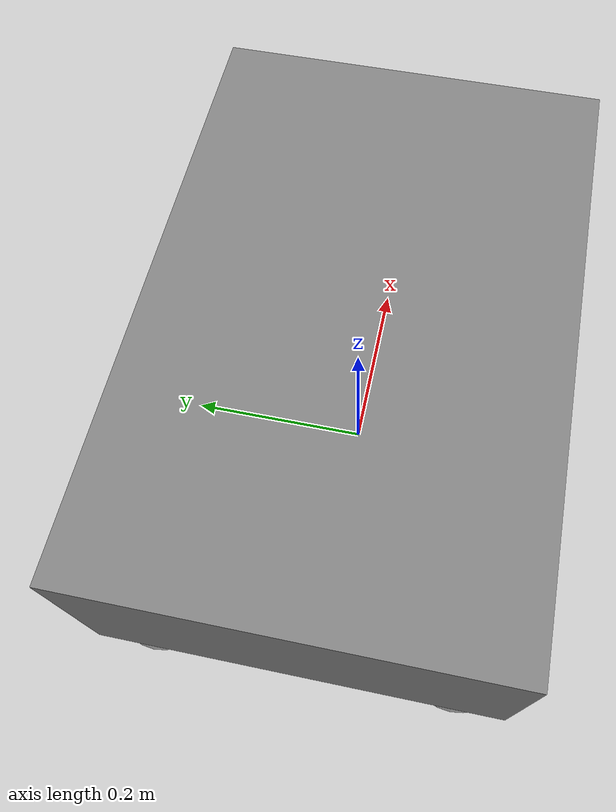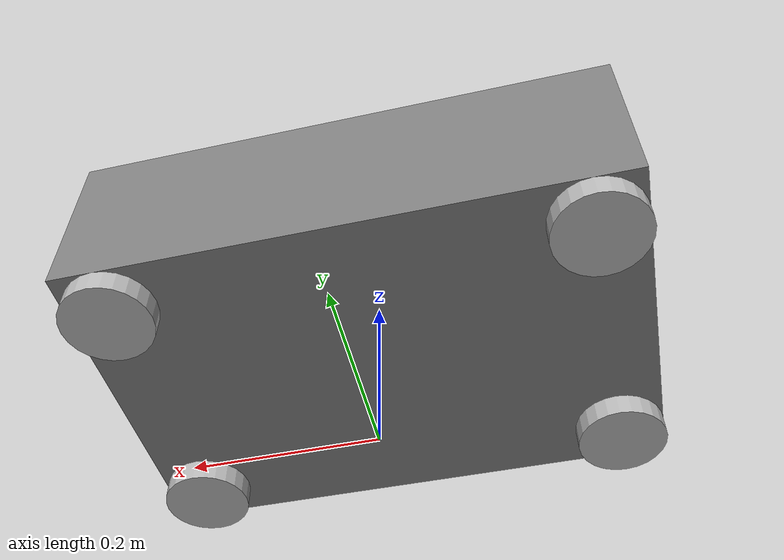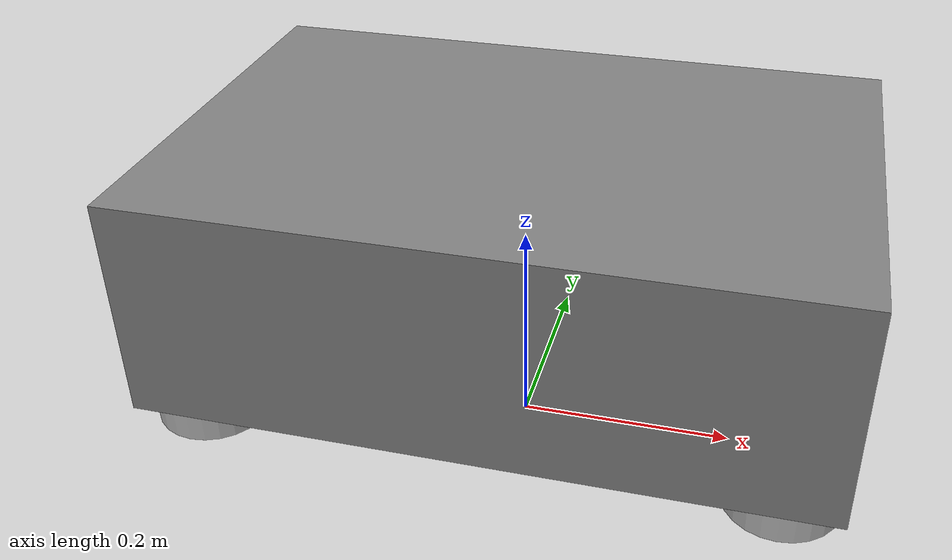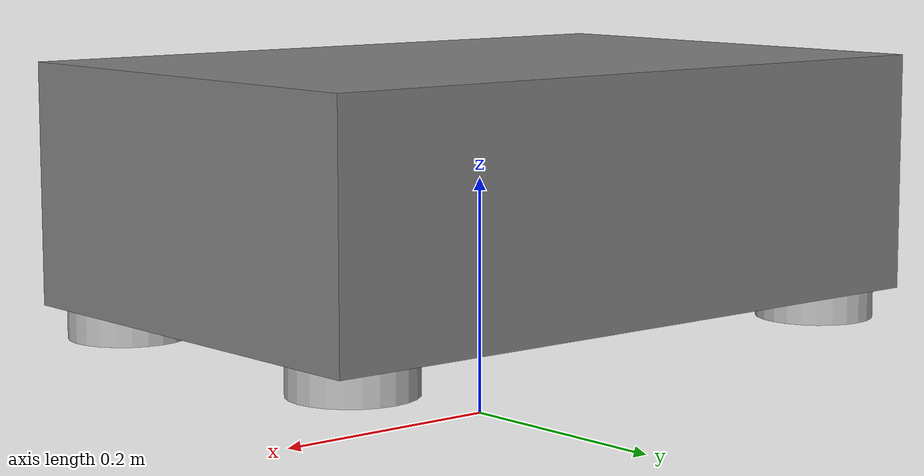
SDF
<?xml version="1.0" ?>
<sdf version="1.7">
  <model name="simple_bot">
    <static>false</static>

    <!-- Chassis -->
    <link name="chassis">
      <pose>0 0 0.2 0 0 0</pose>
      <inertial>
        <mass>5.0</mass>
      </inertial>
      <collision name="collision">
        <geometry>
          <box>
            <size>0.6 0.4 0.2</size>
          </box>
        </geometry>
      </collision>
      <visual name="visual">
        <geometry>
          <box>
            <size>0.6 0.4 0.2</size>
          </box>
        </geometry>
        <material>
          <ambient>0.3 0.3 0.3 1</ambient>
          <diffuse>0.5 0.5 0.5 1</diffuse>
        </material>
      </visual>

      <!-- Depth Camera -->
      <sensor name="depth_camera" type="depth">
        <always_on>1</always_on>
        <update_rate>30</update_rate>
        <visualize>true</visualize>
        <pose>0 0 0.5 0 0 0</pose>
        <depth_camera>
          <horizontal_fov>1.047</horizontal_fov>
          <image>
            <width>640</width>
            <height>480</height>
            <format>R8G8B8</format>
          </image>
          <clip>
            <near>0.1</near>
            <far>10</far>
          </clip>
        </depth_camera>
      </sensor>
    </link>

    <!-- 4 wheels -->
    <link name="wheel_front_left">
      <pose>0.25 0.15 0.1 0 0 0</pose>
      <collision name="collision">
        <geometry>
          <cylinder>
            <radius>0.05</radius>
            <length>0.05</length>
          </cylinder>
        </geometry>
      </collision>
      <visual name="visual">
        <geometry>
          <cylinder>
            <radius>0.05</radius>
            <length>0.05</length>
          </cylinder>
        </geometry>
      </visual>
    </link>

    <link name="wheel_front_right">
      <pose>0.25 -0.15 0.1 0 0 0</pose>
      <collision name="collision">
        <geometry>
          <cylinder>
            <radius>0.05</radius>
            <length>0.05</length>
          </cylinder>
        </geometry>
      </collision>
      <visual name="visual">
        <geometry>
          <cylinder>
            <radius>0.05</radius>
            <length>0.05</length>
          </cylinder>
        </geometry>
      </visual>
    </link>

    <link name="wheel_back_left">
      <pose>-0.25 0.15 0.1 0 0 0</pose>
      <collision name="collision">
        <geometry>
          <cylinder>
            <radius>0.05</radius>
            <length>0.05</length>
          </cylinder>
        </geometry>
      </collision>
      <visual name="visual">
        <geometry>
          <cylinder>
            <radius>0.05</radius>
            <length>0.05</length>
          </cylinder>
        </geometry>
      </visual>
    </link>

    <link name="wheel_back_right">
      <pose>-0.25 -0.15 0.1 0 0 0</pose>
      <collision name="collision">
        <geometry>
          <cylinder>
            <radius>0.05</radius>
            <length>0.05</length>
          </cylinder>
        </geometry>
      </collision>
      <visual name="visual">
        <geometry>
          <cylinder>
            <radius>0.05</radius>
            <length>0.05</length>
          </cylinder>
        </geometry>
      </visual>
    </link>

  </model>
</sdf>
